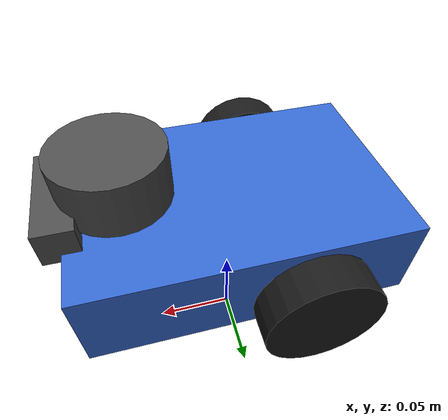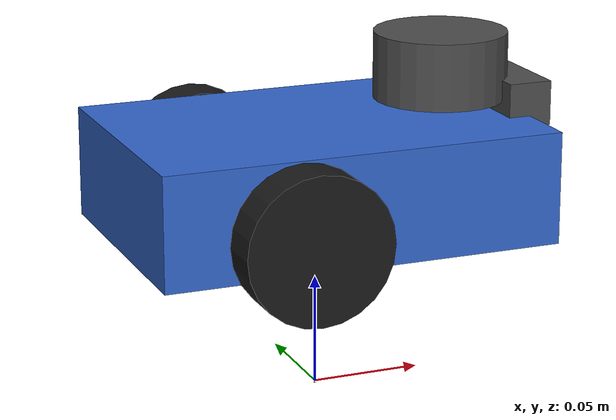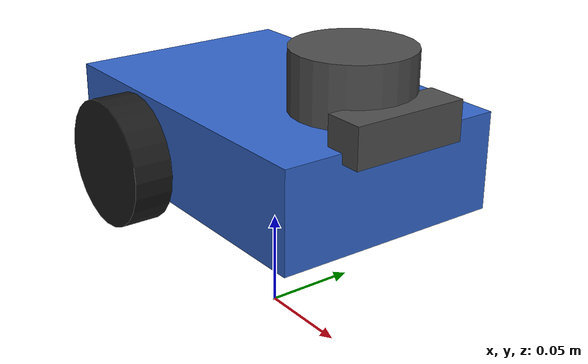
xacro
<?xml version="1.0"?>
<!-- Mycar 差速底盘模型：base_footprint / base_link / laser / camera，xacro 组织 -->
<robot name="mycar" xmlns:xacro="http://www.ros.org/wiki/xacro">
    <xacro:property name="wheel_radius" value="0.0325"/>
    <xacro:property name="wheel_length" value="0.02"/>
    <xacro:property name="wheel_x" value="-0.03"/>
    <xacro:property name="wheel_y" value="0.0725"/>
    <xacro:property name="wheel_z" value="0.0325"/>

    <link name="base_footprint">
        <visual><geometry><sphere radius="0.001"/></geometry></visual>
    </link>

    <link name="base_link">
        <visual>
            <geometry><box size="0.18 0.12 0.05"/></geometry>
            <origin xyz="0 0 0.04" rpy="0 0 0"/>
            <material name="blue"><color rgba="0.2 0.4 0.8 1.0"/></material>
        </visual>
    </link>
    <joint name="base_link2base_footprint" type="fixed">
        <parent link="base_footprint"/>
        <child link="base_link"/>
        <origin xyz="0 0 ${wheel_radius + 0.025}" rpy="0 0 0"/>
    </joint>

    <xacro:macro name="wheel" params="name flag">
        <link name="${name}_wheel">
            <visual>
                <geometry><cylinder radius="${wheel_radius}" length="${wheel_length}"/></geometry>
                <origin xyz="0 0 0" rpy="1.5708 0 0"/>
                <material name="black"><color rgba="0.1 0.1 0.1 1.0"/></material>
            </visual>
        </link>
        <joint name="${name}_wheel2base_link" type="continuous">
            <parent link="base_link"/>
            <child link="${name}_wheel"/>
            <origin xyz="${wheel_x} ${flag * wheel_y} ${wheel_z}" rpy="0 0 0"/>
            <axis xyz="0 1 0"/>
        </joint>
    </xacro:macro>
    <xacro:wheel name="left" flag="1"/>
    <xacro:wheel name="right" flag="-1"/>

    <link name="laser">
        <visual>
            <geometry><cylinder radius="0.03" length="0.03"/></geometry>
            <material name="dark"><color rgba="0.3 0.3 0.3 1.0"/></material>
        </visual>
    </link>
    <joint name="laser2base_link" type="fixed">
        <parent link="base_link"/>
        <child link="laser"/>
        <origin xyz="0.06 0 0.085" rpy="0 0 0"/>
    </joint>

    <link name="camera">
        <visual>
            <geometry><box size="0.02 0.06 0.02"/></geometry>
            <material name="dark"><color rgba="0.3 0.3 0.3 1.0"/></material>
        </visual>
    </link>
    <joint name="camera2base_link" type="fixed">
        <parent link="base_link"/>
        <child link="camera"/>
        <origin xyz="0.09 0 0.07" rpy="0 0 0"/>
    </joint>
</robot>
